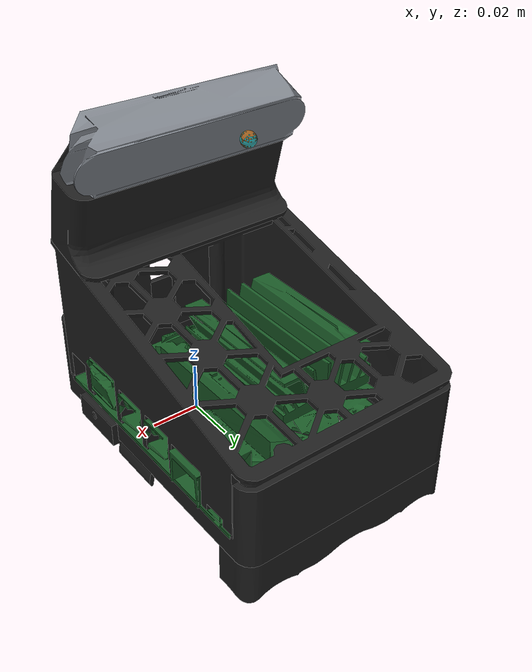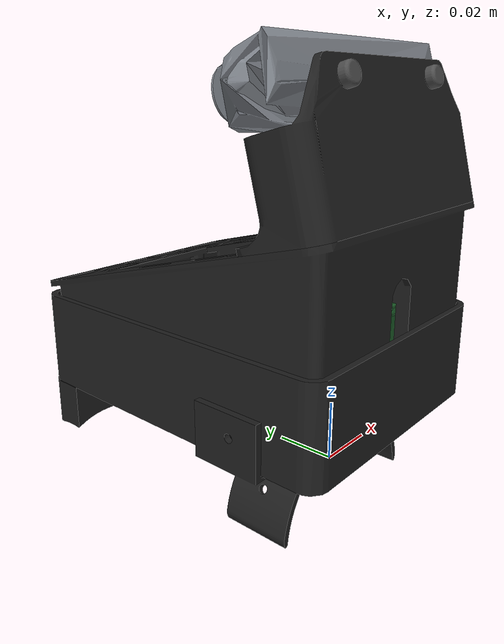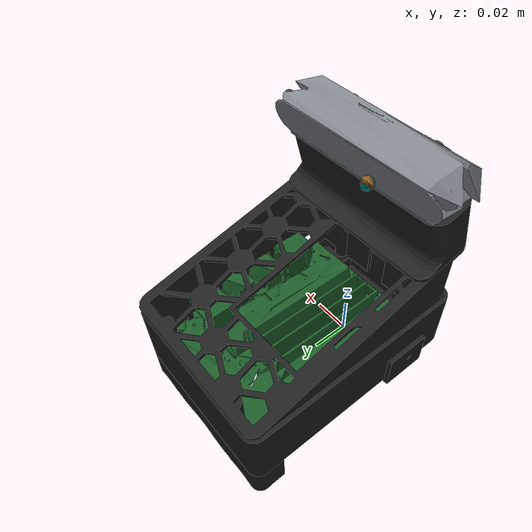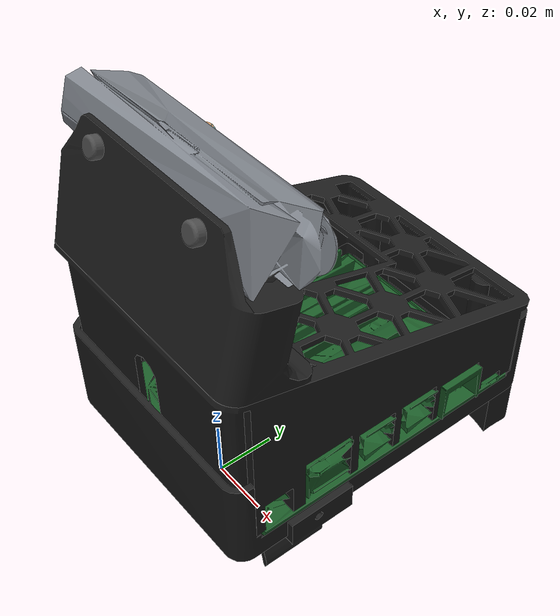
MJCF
<mujoco model="camera_assembly">
  <compiler angle="radian"/>

  <default>
    <default class="camera_visual">
      <geom type="mesh" contype="0" conaffinity="0" group="2"/>
    </default>
    <default class="camera_collision">
      <geom type="mesh" contype="1" conaffinity="1" group="3"
            rgba="0.3 0.3 0.5 0.2"/>
    </default>
  </default>

  <asset>
    <material name="cam_abs_black" rgba="0.12 0.12 0.12 1" specular="0.1" shininess="0.05"/>
    <material name="cam_pcb_green" rgba="0.1 0.35 0.15 1" specular="0.2" shininess="0.1"/>
    <material name="cam_aluminum" rgba="0.5 0.52 0.55 1" specular="0.6" shininess="0.4" reflectance="0.1"/>
    <material name="cam_screw" rgba="0.3 0.3 0.3 1" specular="0.4" shininess="0.3"/>
    <mesh name="nano_arm_mount" file="2023_03_09_nanoArmMount.stl" scale="0.001 0.001 0.001"/>
    <mesh name="enclosure_bottom" file="2023_09_28_nanoEnclosureBottom.stl" scale="0.001 0.001 0.001"/>
    <mesh name="jetson_nano" file="2023_03_21_jetsonNano.stl" scale="0.001 0.001 0.001"/>
    <mesh name="front_stabilizer" file="2023_09_21_nanoEnclosureFrontStabilizer.stl" scale="0.001 0.001 0.001"/>
    <mesh name="enclosure_top" file="2023_06_06_nanoEnclosureTopCameraBack.stl" scale="0.001 0.001 0.001"/>
    <mesh name="camera_back_mount" file="2023_06_06_cameraBackMount.stl" scale="0.001 0.001 0.001"/>
    <mesh name="screw_head" file="2023_11_07_screwHead.stl" scale="0.001 0.001 0.001"/>
    <mesh name="d415" file="d415.stl"/>
  </asset>

  <worldbody>
    <!-- nanoMount: attaches to link_6 at xyz=[0.0165, 0, 0.0011], rpy=[3π/2, 0, 3π/2] -->
    <body gravcomp="1" name="camera_base">
      <inertial pos="-0.0024 0.0047 0.0115" mass="0.008"
                fullinertia="0.00000095025 0.0000067325 0.0000069433 -0.000000297842 -0.00000000010444 0.000000000470196"/>
      <geom class="camera_visual" mesh="nano_arm_mount" material="cam_abs_black"/>
      <geom class="camera_collision" mesh="nano_arm_mount"/>

      <!-- enclosureBottom: xyz=[0.0412, -0.0218, 0.026], rpy=[0, 0, π/2] -->
      <body gravcomp="1" name="enclosure_bottom" pos="0.0412 -0.0218 0.026"
            quat="0.707107 0 0 0.707107">
        <inertial pos="0.0546451 0.0472161 0.00043655" mass="0.040"
                  fullinertia="0.000041028 0.000083168 0.000116424 -0.000000324 -0.00000045367 0.0000026243"/>
        <geom class="camera_visual" mesh="enclosure_bottom" material="cam_abs_black"/>
        <geom class="camera_collision" mesh="enclosure_bottom"/>

        <!-- Jetson Nano: xyz=[0.0105, 0.014, -0.0015] -->
        <body gravcomp="1" name="jetson_nano" pos="0.0105 0.014 -0.0015">
          <inertial pos="0.0435615 0.02502709 0.0091247" mass="0.142"
                    fullinertia="0.000077456 0.0001013 0.0001727 -0.000004935 0.0000015461 0.0000036951"/>
          <geom class="camera_visual" mesh="jetson_nano" material="cam_pcb_green"/>
          <geom class="camera_collision" mesh="jetson_nano"/>
        </body>

        <!-- Front stabilizer: xyz=[0.1063, 0.0493, -0.0363], rpy=[0, 0, π/2] -->
        <body gravcomp="1" name="front_stabilizer" pos="0.1063 0.0493 -0.0363"
              quat="0.707107 0 0 0.707107">
          <inertial pos="-0.008107 -0.000955 0.02045" mass="0.0198"
                    fullinertia="0.00000074776 0.0000118843 0.0000119096 0.000000000071856 0.0000000002764 0.00000001021778"/>
          <geom class="camera_visual" mesh="front_stabilizer" material="cam_abs_black"/>
          <geom class="camera_collision" mesh="front_stabilizer"/>
        </body>

        <!-- Enclosure top: xyz=[0.009925, 0.04099, 0.05442], rpy=[0, 165.4°, π] -->
        <body gravcomp="1" name="enclosure_top" pos="0.009925 0.04099 0.05442"
              quat="0 -0.991894 0 0.127065">
          <inertial pos="0.041228 0.006275 0.016379" mass="0.046"
                    fullinertia="0.00005942 0.000085611 0.000126390 -0.000000046193 0.0000091699 0.0000012783"/>
          <geom class="camera_visual" mesh="enclosure_top" material="cam_abs_black"/>
          <geom class="camera_collision" mesh="enclosure_top"/>

          <!-- Camera back mount: xyz=[-0.0132, 0, -0.022], rpy=[0, π/2, 0] -->
          <body gravcomp="1" name="camera_mount" pos="-0.0132 0 -0.022"
                quat="0.707107 0 0.707107 0">
            <inertial pos="-0.007986 0 0.010064" mass="0.004"
                      fullinertia="0.000002782 0.0000005528 0.000002964 -0.00000000002321 0.000000074385 -0.00000000000178"/>
            <geom class="camera_visual" mesh="camera_back_mount" material="cam_abs_black"/>
            <geom class="camera_collision" mesh="camera_back_mount"/>

            <!-- Screw heads (visual only) -->
            <geom class="camera_visual" mesh="screw_head" material="cam_screw"
                  pos="0.0165 -0.0225 0" quat="0 1 0 0"/>
            <geom class="camera_visual" mesh="screw_head" material="cam_screw"
                  pos="0.0165 0.0225 0" quat="0 1 0 0"/>

            <!-- Intel RealSense D415: xyz=[0.006, 0, 0.013], rpy=[0, -π/2, π]
                 This places bottom_screw_frame. The D415 camera_link is at
                 bottom_screw_frame + [0, 0.02, 0.0115]. -->
            <body gravcomp="1" name="d415" pos="0.006 0 0.013"
                  quat="0 0.707107 0 0.707107">
              <inertial pos="0 0 0.0115" mass="0.0589"
                        fullinertia="0.00005491 0.00000521068 0.0000554597 -0.0000000249492 0.00000004862028 0.00000000857625"/>
              <geom class="camera_visual" mesh="d415" material="cam_aluminum"
                    pos="0.00987 0 0.0115" quat="0.5 0.5 0.5 0.5"/>
              <geom class="camera_collision" type="box"
                    size="0.010025 0.0495 0.0115" pos="0 0 0.0115"/>
            </body>

            <!-- camera_link: calibrated extrinsics from ada.xacro.
                 Parent is cameraMount, xyz=[0.0194, -0.01606, 0.029014],
                 rpy=[0.17234, -1.56127, 2.96967]. -->
            <site name="camera_link" pos="0.0194 -0.01606 0.029014"
                  quat="0.000429 0.703780 0.000724 0.710417"
                  size="0.003" rgba="1 0.5 0 0.5"/>

            <site name="color_optical_frame" pos="0.0194 -0.01606 0.029014"
                  quat="0.706951 -0.003895 -0.002741 0.707246"
                  size="0.003" rgba="0 1 1 0.5"/>

            <camera name="d415_color" pos="0.0194 -0.01606 0.029014"
                    quat="0.003895 0.706951 0.707246 0.002741"
                    fovy="43" resolution="1280 720"/>
            <!-- Depth uses aligned_depth_to_color (same frame and FOV as color).
                 Render with renderer.enable_depth_rendering(True).
                 Clip output to [0.16, 10.0] m for D415 fidelity. -->
            <camera name="d415_depth" pos="0.0194 -0.01606 0.029014"
                    quat="0.003895 0.706951 0.707246 0.002741"
                    fovy="43" resolution="1280 720"/>
          </body>
        </body>
      </body>
    </body>
  </worldbody>
</mujoco>
